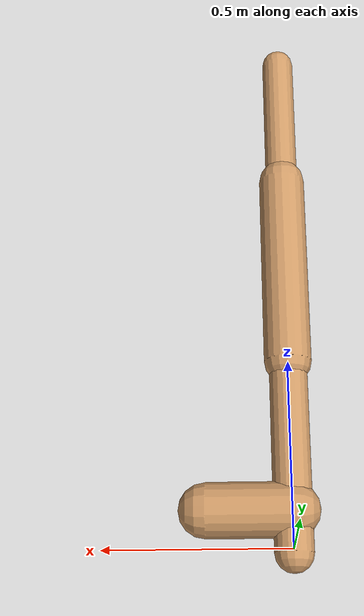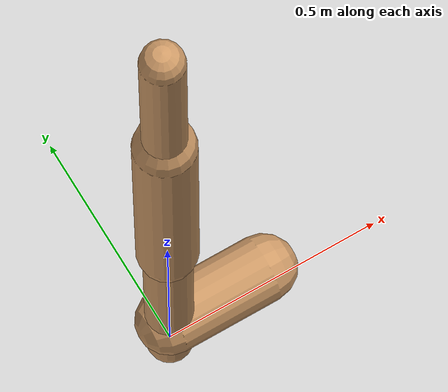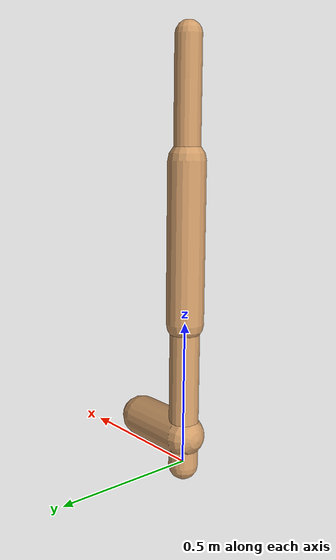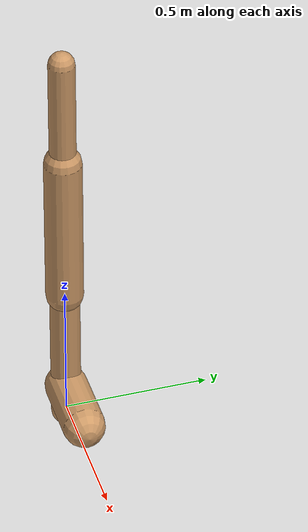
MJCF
<mujoco model="walker2d">
  <compiler angle="degree" coordinate="global" inertiafromgeom="true" />
  <default>
    <joint armature="0.01" damping=".1" limited="true" />
    <geom conaffinity="0" condim="3" contype="1" density="1000" friction="0.8 .1 .1" rgba="0.8 0.6 .4 1" />
  </default>
  <option integrator="RK4" timestep="0.002" />
  <worldbody>

    <body name="torso" pos="0 0 0.20802224631238975">
      <joint armature="0" axis="1 0 0" damping="0" limited="false" name="ignorex" pos="0 0 0" stiffness="0" type="slide" />
      <joint armature="0" axis="0 0 1" damping="0" limited="false" name="ignorez" pos="0 0 0" ref="1.25" stiffness="0" type="slide" />
      <joint armature="0" axis="0 1 0" damping="0" limited="false" name="ignorey" pos="0 0 0" stiffness="0" type="hinge" />
      <geom fromto="0 0 1.45 0 0 1.05" name="torso_geom" size="0.0452485572810589" type="capsule" />
      <body name="thigh">
        <joint axis="0 -1 0" name="thigh_joint" pos="0 0 1.05" range="-150 0" type="hinge" />
        <geom fromto="0.0 0.0 1.05 0.0 0.0 0.5014631464836048" name="thigh_geom" size="0.06467921605480279" type="capsule" />
        <body name="leg" pos="0.0 0.0 -0.09853685351639518">
          <joint axis="0 -1 0" name="leg_joint" pos="0 0 0.6" range="-150 0" type="hinge" />
          <geom fromto="0.0 0.0 0.6 0.0 0.0 -0.009485392795994585" name="leg_geom" size="0.05174337284384223" type="capsule" />
          <body name="foot" pos="0.0 0.0 -0.10948539279599459">
            <joint axis="0 -1 0" name="foot_joint" pos="0 0 0.1" range="-45 45" type="hinge" />
            <geom fromto="-0.0 0.0 0.1 0.22680384227281222 0.0 0.1" name="foot_geom" size="0.07328182326551792" type="capsule" />
          </body>
        </body>
      </body>

      <body name="thigh_left">
        <joint axis="0 -1 0" name="thigh_left_joint" pos="0 0 1.05" range="-150 0" type="hinge" />
        <geom fromto="0.0 0.0 1.05 0.0 0.0 0.5014631464836048" name="thigh_left_geom" rgba=".7 .3 .6 1" size="0.06467921605480279" type="capsule" />
        <body name="leg_left" pos="0.0 0.0 -0.09853685351639518">
          <joint axis="0 -1 0" name="leg_left_joint" pos="0 0 0.6" range="-150 0" type="hinge" />
          <geom fromto="0.0 0.0 0.6 0.0 0.0 -0.009485392795994585" name="leg_left_geom" rgba=".7 .3 .6 1" size="0.05174337284384223" type="capsule" />
          <body name="foot_left" pos="0.0 0.0 -0.10948539279599459">
            <joint axis="0 -1 0" name="foot_left_joint" pos="0 0 0.1" range="-45 45" type="hinge" />
            <geom fromto="-0.0 0.0 0.1 0.22680384227281222 0.0 0.1" name="foot_left_geom" rgba=".7 .3 .6 1" size="0.07328182326551792" type="capsule" />
          </body>
        </body>
      </body>
    </body>
  </worldbody>
  <actuator>

    <motor ctrllimited="true" ctrlrange="-1.0 1.0" gear="100" joint="thigh_joint" />
    <motor ctrllimited="true" ctrlrange="-1.0 1.0" gear="100" joint="leg_joint" />
    <motor ctrllimited="true" ctrlrange="-1.0 1.0" gear="100" joint="foot_joint" />
    <motor ctrllimited="true" ctrlrange="-1.0 1.0" gear="100" joint="thigh_left_joint" />
    <motor ctrllimited="true" ctrlrange="-1.0 1.0" gear="100" joint="leg_left_joint" />
    <motor ctrllimited="true" ctrlrange="-1.0 1.0" gear="100" joint="foot_left_joint" />

  </actuator>
</mujoco>
